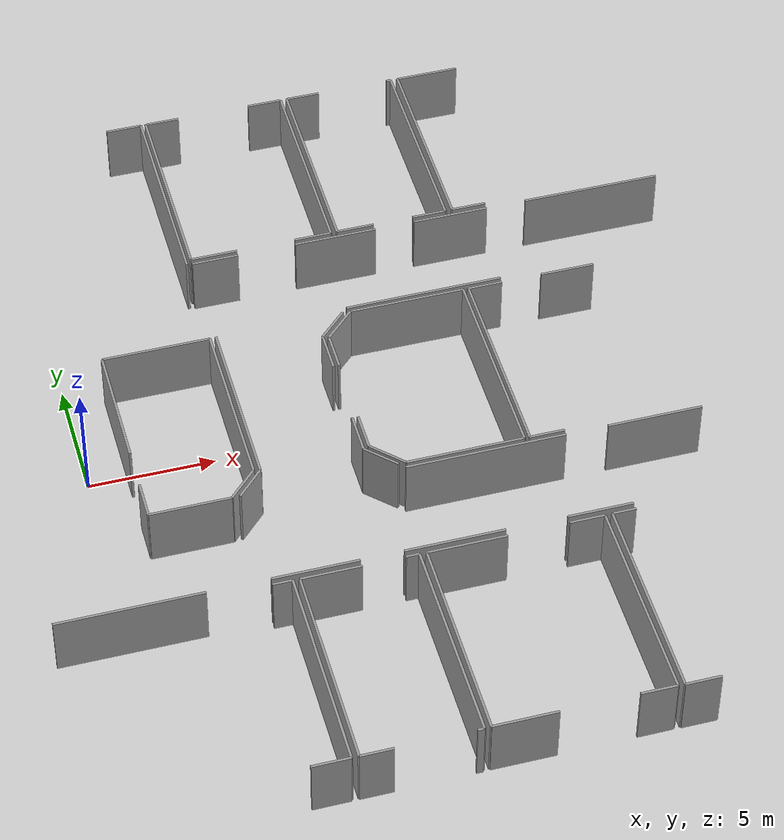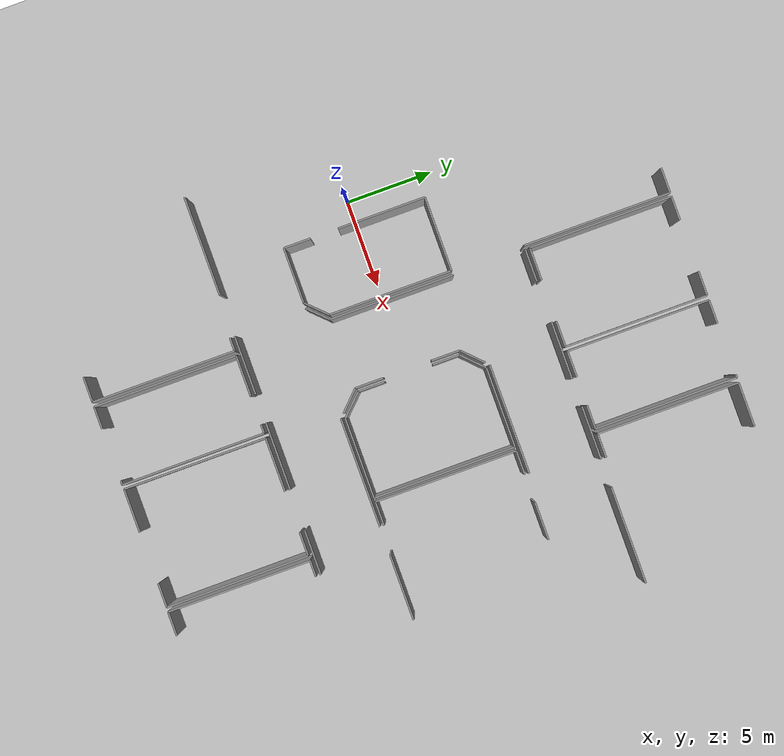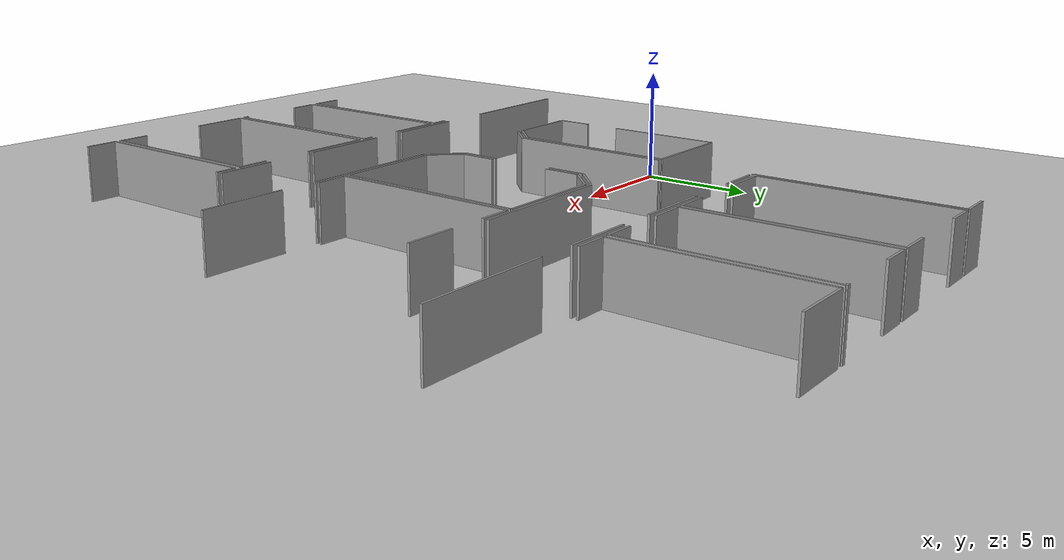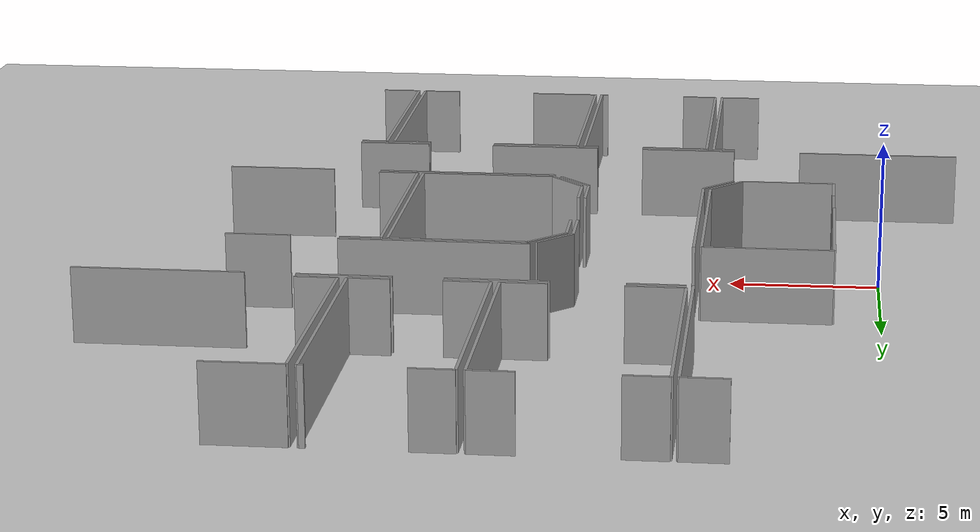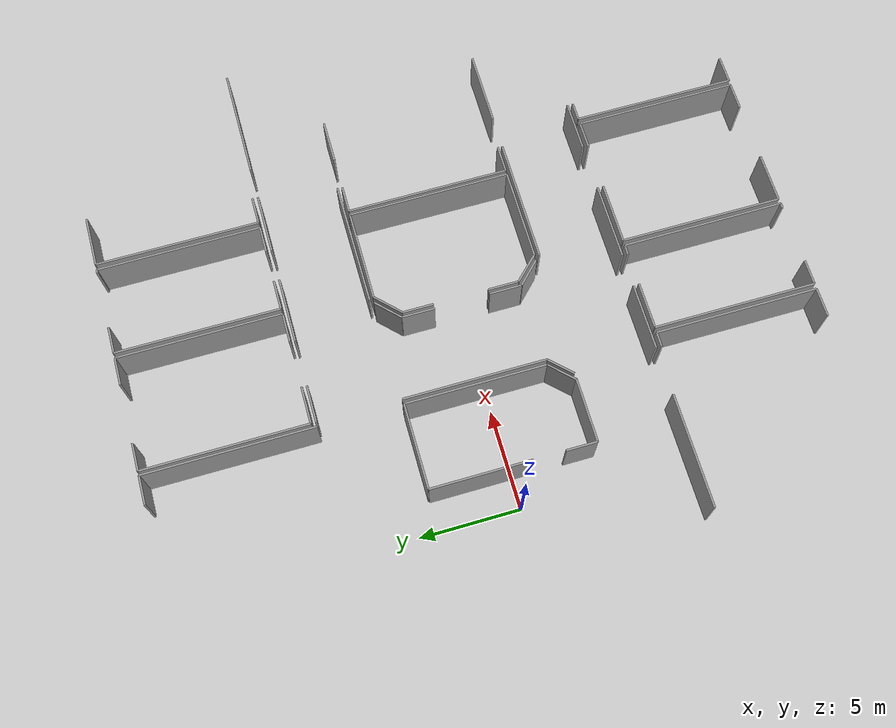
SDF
<sdf version="1.6">
 <world name="default">
  <model name="ground_plane">
   <static>1</static>
   <link name="link">
    <collision name="collision">
     <geometry><plane><normal>0 0 1</normal><size>100 100</size></plane></geometry>
     <surface><friction><ode><mu>100</mu><mu2>50</mu2></ode></friction></surface>
    </collision>
    <visual name="visual">
     <cast_shadows>0</cast_shadows>
     <geometry><plane><normal>0 0 1</normal><size>100 100</size></plane></geometry>
     <material>
      <script><uri>file://media/materials/scripts/gazebo.material</uri><name>Gazebo/Grey</name></script>
     </material>
    </visual>
   </link>
  </model>
  <model name="50041171">
   <static>1</static>
   <link name="Wall_64">
    <collision name="Wall_64_Collision">
     <geometry><box><size>8.46921870934 0.1 2.5</size></box></geometry>
     <pose>4.23460935467 0 1.25 0 0 0</pose>
    </collision>
    <visual name="Wall_64_Visual">
     <pose>4.23460935467 0 1.25 0 0 0</pose>
     <geometry><box><size>8.46921870934 0.1 2.5</size></box></geometry>
     <material>
      <script><uri>file://media/materials/scripts/gazebo.material</uri><name>Gazebo/Grey</name></script>
      <ambient>1 1 1 1</ambient>
     </material>
    </visual>
    <pose>71.5414447752 -8.48775286105 0 0 0 1.57079632679</pose>
   </link>
   <link name="Wall_65">
    <collision name="Wall_65_Collision">
     <geometry><box><size>1.44388658623 0.1 2.5</size></box></geometry>
     <pose>0.721943293113 0 1.25 0 0 0</pose>
    </collision>
    <visual name="Wall_65_Visual">
     <pose>0.721943293113 0 1.25 0 0 0</pose>
     <geometry><box><size>1.44388658623 0.1 2.5</size></box></geometry>
     <material>
      <script><uri>file://media/materials/scripts/gazebo.material</uri><name>Gazebo/Grey</name></script>
      <ambient>1 1 1 1</ambient>
     </material>
    </visual>
    <pose>71.5414447752 -0.0185341517135 0 0 0 3.14159265359</pose>
   </link>
   <link name="Wall_92">
    <collision name="Wall_92_Collision">
     <geometry><box><size>2.54996921554 0.1 2.5</size></box></geometry>
     <pose>1.27498460777 0 1.25 0 0 0</pose>
    </collision>
    <visual name="Wall_92_Visual">
     <pose>1.27498460777 0 1.25 0 0 0</pose>
     <geometry><box><size>2.54996921554 0.1 2.5</size></box></geometry>
     <material>
      <script><uri>file://media/materials/scripts/gazebo.material</uri><name>Gazebo/Grey</name></script>
      <ambient>1 1 1 1</ambient>
     </material>
    </visual>
    <pose>84.6671786832 -25.0291024266 0 0 0 3.14159265359</pose>
   </link>
   <link name="Wall_93">
    <collision name="Wall_93_Collision">
     <geometry><box><size>3.88760179502 0.1 2.5</size></box></geometry>
     <pose>1.94380089751 0 1.25 0 0 0</pose>
    </collision>
    <visual name="Wall_93_Visual">
     <pose>1.94380089751 0 1.25 0 0 0</pose>
     <geometry><box><size>3.88760179502 0.1 2.5</size></box></geometry>
     <material>
      <script><uri>file://media/materials/scripts/gazebo.material</uri><name>Gazebo/Grey</name></script>
      <ambient>1 1 1 1</ambient>
     </material>
    </visual>
    <pose>79.7381098974 -25.0291024266 0 0 0 3.14159265359</pose>
   </link>
   <link name="Wall_94">
    <collision name="Wall_94_Collision">
     <geometry><box><size>3.35582397634 0.1 2.5</size></box></geometry>
     <pose>1.67791198817 0 1.25 0 0 0</pose>
    </collision>
    <visual name="Wall_94_Visual">
     <pose>1.67791198817 0 1.25 0 0 0</pose>
     <geometry><box><size>3.35582397634 0.1 2.5</size></box></geometry>
     <material>
      <script><uri>file://media/materials/scripts/gazebo.material</uri><name>Gazebo/Grey</name></script>
      <ambient>1 1 1 1</ambient>
     </material>
    </visual>
    <pose>74.1913206853 -25.0291024266 0 0 0 3.14159265359</pose>
   </link>
   <link name="Wall_95">
    <collision name="Wall_95_Collision">
     <geometry><box><size>5.66180250973 0.1 2.5</size></box></geometry>
     <pose>2.83090125486 0 1.25 0 0 0</pose>
    </collision>
    <visual name="Wall_95_Visual">
     <pose>2.83090125486 0 1.25 0 0 0</pose>
     <geometry><box><size>5.66180250973 0.1 2.5</size></box></geometry>
     <material>
      <script><uri>file://media/materials/scripts/gazebo.material</uri><name>Gazebo/Grey</name></script>
      <ambient>1 1 1 1</ambient>
     </material>
    </visual>
    <pose>68.4312617822 -25.0291024266 0 0 0 3.14159265359</pose>
   </link>
   <link name="Wall_116">
    <collision name="Wall_116_Collision">
     <geometry><box><size>6.28383910833 0.1 2.5</size></box></geometry>
     <pose>3.14191955416 0 1.25 0 0 0</pose>
    </collision>
    <visual name="Wall_116_Visual">
     <pose>3.14191955416 0 1.25 0 0 0</pose>
     <geometry><box><size>6.28383910833 0.1 2.5</size></box></geometry>
     <material>
      <script><uri>file://media/materials/scripts/gazebo.material</uri><name>Gazebo/Grey</name></script>
      <ambient>1 1 1 1</ambient>
     </material>
    </visual>
    <pose>77.012827918 -21.0992275321 0 0 0 0.0</pose>
   </link>
   <link name="Wall_117">
    <collision name="Wall_117_Collision">
     <geometry><box><size>3.7372974414 0.1 2.5</size></box></geometry>
     <pose>1.8686487207 0 1.25 0 0 0</pose>
    </collision>
    <visual name="Wall_117_Visual">
     <pose>1.8686487207 0 1.25 0 0 0</pose>
     <geometry><box><size>3.7372974414 0.1 2.5</size></box></geometry>
     <material>
      <script><uri>file://media/materials/scripts/gazebo.material</uri><name>Gazebo/Grey</name></script>
      <ambient>1 1 1 1</ambient>
     </material>
    </visual>
    <pose>84.9704532616 -21.0992275321 0 0 0 0.0</pose>
   </link>
   <link name="Wall_169">
    <collision name="Wall_169_Collision">
     <geometry><box><size>3.17797228763 0.1 2.5</size></box></geometry>
     <pose>1.58898614382 0 1.25 0 0 0</pose>
    </collision>
    <visual name="Wall_169_Visual">
     <pose>1.58898614382 0 1.25 0 0 0</pose>
     <geometry><box><size>3.17797228763 0.1 2.5</size></box></geometry>
     <material>
      <script><uri>file://media/materials/scripts/gazebo.material</uri><name>Gazebo/Grey</name></script>
      <ambient>1 1 1 1</ambient>
     </material>
    </visual>
    <pose>70.3939776702 -20.8675506357 0 0 0 3.14159265359</pose>
   </link>
   <link name="Wall_170">
    <collision name="Wall_170_Collision">
     <geometry><box><size>1.54214297956 0.1 2.5</size></box></geometry>
     <pose>0.771071489778 0 1.25 0 0 0</pose>
    </collision>
    <visual name="Wall_170_Visual">
     <pose>0.771071489778 0 1.25 0 0 0</pose>
     <geometry><box><size>1.54214297956 0.1 2.5</size></box></geometry>
     <material>
      <script><uri>file://media/materials/scripts/gazebo.material</uri><name>Gazebo/Grey</name></script>
      <ambient>1 1 1 1</ambient>
     </material>
    </visual>
    <pose>67.2160053825 -20.8675506357 0 0 0 1.57079632679</pose>
   </link>
   <link name="Wall_171">
    <collision name="Wall_171_Collision">
     <geometry><box><size>5.04446292218 0.1 2.5</size></box></geometry>
     <pose>2.52223146109 0 1.25 0 0 0</pose>
    </collision>
    <visual name="Wall_171_Visual">
     <pose>2.52223146109 0 1.25 0 0 0</pose>
     <geometry><box><size>5.04446292218 0.1 2.5</size></box></geometry>
     <material>
      <script><uri>file://media/materials/scripts/gazebo.material</uri><name>Gazebo/Grey</name></script>
      <ambient>1 1 1 1</ambient>
     </material>
    </visual>
    <pose>67.2160053825 -17.7285508451 0 0 0 1.57079632679</pose>
   </link>
   <link name="Wall_172">
    <collision name="Wall_172_Collision">
     <geometry><box><size>4.26780579763 0.1 2.5</size></box></geometry>
     <pose>2.13390289882 0 1.25 0 0 0</pose>
    </collision>
    <visual name="Wall_172_Visual">
     <pose>2.13390289882 0 1.25 0 0 0</pose>
     <geometry><box><size>4.26780579763 0.1 2.5</size></box></geometry>
     <material>
      <script><uri>file://media/materials/scripts/gazebo.material</uri><name>Gazebo/Grey</name></script>
      <ambient>1 1 1 1</ambient>
     </material>
    </visual>
    <pose>67.2160053825 -12.684087923 0 0 0 0.0</pose>
   </link>
   <link name="Wall_173">
    <collision name="Wall_173_Collision">
     <geometry><box><size>7.06862079253 0.1 2.5</size></box></geometry>
     <pose>3.53431039626 0 1.25 0 0 0</pose>
    </collision>
    <visual name="Wall_173_Visual">
     <pose>3.53431039626 0 1.25 0 0 0</pose>
     <geometry><box><size>7.06862079253 0.1 2.5</size></box></geometry>
     <material>
      <script><uri>file://media/materials/scripts/gazebo.material</uri><name>Gazebo/Grey</name></script>
      <ambient>1 1 1 1</ambient>
     </material>
    </visual>
    <pose>71.4838111802 -12.684087923 0 0 0 -1.57079632679</pose>
   </link>
   <link name="Wall_174">
    <collision name="Wall_174_Collision">
     <geometry><box><size>1.55904123952 0.1 2.5</size></box></geometry>
     <pose>0.779520619761 0 1.25 0 0 0</pose>
    </collision>
    <visual name="Wall_174_Visual">
     <pose>0.779520619761 0 1.25 0 0 0</pose>
     <geometry><box><size>1.55904123952 0.1 2.5</size></box></geometry>
     <material>
      <script><uri>file://media/materials/scripts/gazebo.material</uri><name>Gazebo/Grey</name></script>
      <ambient>1 1 1 1</ambient>
     </material>
    </visual>
    <pose>71.4838111802 -19.7527087155 0 0 0 -2.34485162434</pose>
   </link>
   <link name="Wall_175">
    <collision name="Wall_175_Collision">
     <geometry><box><size>1.86344392467 0.1 2.5</size></box></geometry>
     <pose>0.931721962335 0 1.25 0 0 0</pose>
    </collision>
    <visual name="Wall_175_Visual">
     <pose>0.931721962335 0 1.25 0 0 0</pose>
     <geometry><box><size>1.86344392467 0.1 2.5</size></box></geometry>
     <material>
      <script><uri>file://media/materials/scripts/gazebo.material</uri><name>Gazebo/Grey</name></script>
      <ambient>1 1 1 1</ambient>
     </material>
    </visual>
    <pose>71.7517947025 -8.49295765708 0 0 0 0.0</pose>
   </link>
   <link name="Wall_176">
    <collision name="Wall_176_Collision">
     <geometry><box><size>3.3025065536 0.1 2.5</size></box></geometry>
     <pose>1.6512532768 0 1.25 0 0 0</pose>
    </collision>
    <visual name="Wall_176_Visual">
     <pose>1.6512532768 0 1.25 0 0 0</pose>
     <geometry><box><size>3.3025065536 0.1 2.5</size></box></geometry>
     <material>
      <script><uri>file://media/materials/scripts/gazebo.material</uri><name>Gazebo/Grey</name></script>
      <ambient>1 1 1 1</ambient>
     </material>
    </visual>
    <pose>75.9718687122 -8.49295765708 0 0 0 0.0</pose>
   </link>
   <link name="Wall_177">
    <collision name="Wall_177_Collision">
     <geometry><box><size>3.04696376319 0.1 2.5</size></box></geometry>
     <pose>1.5234818816 0 1.25 0 0 0</pose>
    </collision>
    <visual name="Wall_177_Visual">
     <pose>1.5234818816 0 1.25 0 0 0</pose>
     <geometry><box><size>3.04696376319 0.1 2.5</size></box></geometry>
     <material>
      <script><uri>file://media/materials/scripts/gazebo.material</uri><name>Gazebo/Grey</name></script>
      <ambient>1 1 1 1</ambient>
     </material>
    </visual>
    <pose>80.8846883787 -8.49295765708 0 0 0 0.0</pose>
   </link>
   <link name="Wall_178">
    <collision name="Wall_178_Collision">
     <geometry><box><size>5.56024551404 0.1 2.5</size></box></geometry>
     <pose>2.78012275702 0 1.25 0 0 0</pose>
    </collision>
    <visual name="Wall_178_Visual">
     <pose>2.78012275702 0 1.25 0 0 0</pose>
     <geometry><box><size>5.56024551404 0.1 2.5</size></box></geometry>
     <material>
      <script><uri>file://media/materials/scripts/gazebo.material</uri><name>Gazebo/Grey</name></script>
      <ambient>1 1 1 1</ambient>
     </material>
    </visual>
    <pose>85.5563101805 -8.49295765708 0 0 0 0.0</pose>
   </link>
   <link name="Wall_192">
    <collision name="Wall_192_Collision">
     <geometry><box><size>6.30024356784 0.1 2.5</size></box></geometry>
     <pose>3.15012178392 0 1.25 0 0 0</pose>
    </collision>
    <visual name="Wall_192_Visual">
     <pose>3.15012178392 0 1.25 0 0 0</pose>
     <geometry><box><size>6.30024356784 0.1 2.5</size></box></geometry>
     <material>
      <script><uri>file://media/materials/scripts/gazebo.material</uri><name>Gazebo/Grey</name></script>
      <ambient>1 1 1 1</ambient>
     </material>
    </visual>
    <pose>83.3220562753 -12.447460123 0 0 0 -3.13859038572</pose>
   </link>
   <link name="Wall_193">
    <collision name="Wall_193_Collision">
     <geometry><box><size>1.49009501926 0.1 2.5</size></box></geometry>
     <pose>0.745047509632 0 1.25 0 0 0</pose>
    </collision>
    <visual name="Wall_193_Visual">
     <pose>0.745047509632 0 1.25 0 0 0</pose>
     <geometry><box><size>1.49009501926 0.1 2.5</size></box></geometry>
     <material>
      <script><uri>file://media/materials/scripts/gazebo.material</uri><name>Gazebo/Grey</name></script>
      <ambient>1 1 1 1</ambient>
     </material>
    </visual>
    <pose>77.5029673685 -8.23906516785 0 0 0 3.14159265359</pose>
   </link>
   <link name="Wall_194">
    <collision name="Wall_194_Collision">
     <geometry><box><size>1.88705592617 0.1 2.5</size></box></geometry>
     <pose>0.943527963084 0 1.25 0 0 0</pose>
    </collision>
    <visual name="Wall_194_Visual">
     <pose>0.943527963084 0 1.25 0 0 0</pose>
     <geometry><box><size>1.88705592617 0.1 2.5</size></box></geometry>
     <material>
      <script><uri>file://media/materials/scripts/gazebo.material</uri><name>Gazebo/Grey</name></script>
      <ambient>1 1 1 1</ambient>
     </material>
    </visual>
    <pose>73.6394853599 -8.23906516785 0 0 0 3.14159265359</pose>
   </link>
   <link name="Wall_195">
    <collision name="Wall_195_Collision">
     <geometry><box><size>8.22129269361 0.1 2.5</size></box></geometry>
     <pose>4.1106463468 0 1.25 0 0 0</pose>
    </collision>
    <visual name="Wall_195_Visual">
     <pose>4.1106463468 0 1.25 0 0 0</pose>
     <geometry><box><size>8.22129269361 0.1 2.5</size></box></geometry>
     <material>
      <script><uri>file://media/materials/scripts/gazebo.material</uri><name>Gazebo/Grey</name></script>
      <ambient>1 1 1 1</ambient>
     </material>
    </visual>
    <pose>71.7524294338 -8.23906516785 0 0 0 1.57079632679</pose>
   </link>
   <link name="Wall_196">
    <collision name="Wall_196_Collision">
     <geometry><box><size>1.37228890426 0.1 2.5</size></box></geometry>
     <pose>0.686144452132 0 1.25 0 0 0</pose>
    </collision>
    <visual name="Wall_196_Visual">
     <pose>0.686144452132 0 1.25 0 0 0</pose>
     <geometry><box><size>1.37228890426 0.1 2.5</size></box></geometry>
     <material>
      <script><uri>file://media/materials/scripts/gazebo.material</uri><name>Gazebo/Grey</name></script>
      <ambient>1 1 1 1</ambient>
     </material>
    </visual>
    <pose>71.7524294338 -0.0177724742458 0 0 0 0.0</pose>
   </link>
   <link name="Wall_197">
    <collision name="Wall_197_Collision">
     <geometry><box><size>1.4068182828 0.1 2.5</size></box></geometry>
     <pose>0.703409141399 0 1.25 0 0 0</pose>
    </collision>
    <visual name="Wall_197_Visual">
     <pose>0.703409141399 0 1.25 0 0 0</pose>
     <geometry><box><size>1.4068182828 0.1 2.5</size></box></geometry>
     <material>
      <script><uri>file://media/materials/scripts/gazebo.material</uri><name>Gazebo/Grey</name></script>
      <ambient>1 1 1 1</ambient>
     </material>
    </visual>
    <pose>76.0960221394 -0.0177724742458 0 0 0 0.0</pose>
   </link>
   <link name="Wall_198">
    <collision name="Wall_198_Collision">
     <geometry><box><size>8.22129269459 0.1 2.5</size></box></geometry>
     <pose>4.11064634729 0 1.25 0 0 0</pose>
    </collision>
    <visual name="Wall_198_Visual">
     <pose>4.11064634729 0 1.25 0 0 0</pose>
     <geometry><box><size>8.22129269459 0.1 2.5</size></box></geometry>
     <material>
      <script><uri>file://media/materials/scripts/gazebo.material</uri><name>Gazebo/Grey</name></script>
      <ambient>1 1 1 1</ambient>
     </material>
    </visual>
    <pose>77.5028404222 -0.0177724742458 0 0 0 -1.57078088564</pose>
   </link>
   <link name="Wall_199">
    <collision name="Wall_199_Collision">
     <geometry><box><size>1.3573092474 0.1 2.5</size></box></geometry>
     <pose>0.6786546237 0 1.25 0 0 0</pose>
    </collision>
    <visual name="Wall_199_Visual">
     <pose>0.6786546237 0 1.25 0 0 0</pose>
     <geometry><box><size>1.3573092474 0.1 2.5</size></box></geometry>
     <material>
      <script><uri>file://media/materials/scripts/gazebo.material</uri><name>Gazebo/Grey</name></script>
      <ambient>1 1 1 1</ambient>
     </material>
    </visual>
    <pose>82.2767808971 -8.2204040699 0 0 0 3.14159265359</pose>
   </link>
   <link name="Wall_200">
    <collision name="Wall_200_Collision">
     <geometry><box><size>1.50850222473 0.1 2.5</size></box></geometry>
     <pose>0.754251112366 0 1.25 0 0 0</pose>
    </collision>
    <visual name="Wall_200_Visual">
     <pose>0.754251112366 0 1.25 0 0 0</pose>
     <geometry><box><size>1.50850222473 0.1 2.5</size></box></geometry>
     <material>
      <script><uri>file://media/materials/scripts/gazebo.material</uri><name>Gazebo/Grey</name></script>
      <ambient>1 1 1 1</ambient>
     </material>
    </visual>
    <pose>79.2741213733 -8.2204040699 0 0 0 3.14159265359</pose>
   </link>
   <link name="Wall_201">
    <collision name="Wall_201_Collision">
     <geometry><box><size>8.20745555295 0.1 2.5</size></box></geometry>
     <pose>4.10372777647 0 1.25 0 0 0</pose>
    </collision>
    <visual name="Wall_201_Visual">
     <pose>4.10372777647 0 1.25 0 0 0</pose>
     <geometry><box><size>8.20745555295 0.1 2.5</size></box></geometry>
     <material>
      <script><uri>file://media/materials/scripts/gazebo.material</uri><name>Gazebo/Grey</name></script>
      <ambient>1 1 1 1</ambient>
     </material>
    </visual>
    <pose>77.7656191486 -8.2204040699 0 0 0 1.57079632679</pose>
   </link>
   <link name="Wall_202">
    <collision name="Wall_202_Collision">
     <geometry><box><size>1.36111763474 0.1 2.5</size></box></geometry>
     <pose>0.680558817369 0 1.25 0 0 0</pose>
    </collision>
    <visual name="Wall_202_Visual">
     <pose>0.680558817369 0 1.25 0 0 0</pose>
     <geometry><box><size>1.36111763474 0.1 2.5</size></box></geometry>
     <material>
      <script><uri>file://media/materials/scripts/gazebo.material</uri><name>Gazebo/Grey</name></script>
      <ambient>1 1 1 1</ambient>
     </material>
    </visual>
    <pose>77.7656191486 -0.0129485169505 0 0 0 0.0</pose>
   </link>
   <link name="Wall_203">
    <collision name="Wall_203_Collision">
     <geometry><box><size>0.187626549538 0.1 2.5</size></box></geometry>
     <pose>0.0938132747688 0 1.25 0 0 0</pose>
    </collision>
    <visual name="Wall_203_Visual">
     <pose>0.0938132747688 0 1.25 0 0 0</pose>
     <geometry><box><size>0.187626549538 0.1 2.5</size></box></geometry>
     <material>
      <script><uri>file://media/materials/scripts/gazebo.material</uri><name>Gazebo/Grey</name></script>
      <ambient>1 1 1 1</ambient>
     </material>
    </visual>
    <pose>82.0749363682 -0.0129485169505 0 0 0 0.0</pose>
   </link>
   <link name="Wall_204">
    <collision name="Wall_204_Collision">
     <geometry><box><size>8.20746786802 0.1 2.5</size></box></geometry>
     <pose>4.10373393401 0 1.25 0 0 0</pose>
    </collision>
    <visual name="Wall_204_Visual">
     <pose>4.10373393401 0 1.25 0 0 0</pose>
     <geometry><box><size>8.20746786802 0.1 2.5</size></box></geometry>
     <material>
      <script><uri>file://media/materials/scripts/gazebo.material</uri><name>Gazebo/Grey</name></script>
      <ambient>1 1 1 1</ambient>
     </material>
    </visual>
    <pose>82.2625629177 -0.0129485169505 0 0 0 -1.56906400365</pose>
   </link>
   <link name="Wall_206">
    <collision name="Wall_206_Collision">
     <geometry><box><size>1.38231765759 0.1 2.5</size></box></geometry>
     <pose>0.691158828794 0 1.25 0 0 0</pose>
    </collision>
    <visual name="Wall_206_Visual">
     <pose>0.691158828794 0 1.25 0 0 0</pose>
     <geometry><box><size>1.38231765759 0.1 2.5</size></box></geometry>
     <material>
      <script><uri>file://media/materials/scripts/gazebo.material</uri><name>Gazebo/Grey</name></script>
      <ambient>1 1 1 1</ambient>
     </material>
    </visual>
    <pose>83.9424425727 -8.20935974662 0 0 0 3.14159265359</pose>
   </link>
   <link name="Wall_207">
    <collision name="Wall_207_Collision">
     <geometry><box><size>8.19044475617 0.1 2.5</size></box></geometry>
     <pose>4.09522237808 0 1.25 0 0 0</pose>
    </collision>
    <visual name="Wall_207_Visual">
     <pose>4.09522237808 0 1.25 0 0 0</pose>
     <geometry><box><size>8.19044475617 0.1 2.5</size></box></geometry>
     <material>
      <script><uri>file://media/materials/scripts/gazebo.material</uri><name>Gazebo/Grey</name></script>
      <ambient>1 1 1 1</ambient>
     </material>
    </visual>
    <pose>82.5601249151 -8.20935974662 0 0 0 1.57079632679</pose>
   </link>
   <link name="Wall_208">
    <collision name="Wall_208_Collision">
     <geometry><box><size>2.54882669933 0.1 2.5</size></box></geometry>
     <pose>1.27441334967 0 1.25 0 0 0</pose>
    </collision>
    <visual name="Wall_208_Visual">
     <pose>1.27441334967 0 1.25 0 0 0</pose>
     <geometry><box><size>2.54882669933 0.1 2.5</size></box></geometry>
     <material>
      <script><uri>file://media/materials/scripts/gazebo.material</uri><name>Gazebo/Grey</name></script>
      <ambient>1 1 1 1</ambient>
     </material>
    </visual>
    <pose>82.5601249151 -0.0189149904473 0 0 0 0.0</pose>
   </link>
   <link name="Wall_251">
    <collision name="Wall_251_Collision">
     <geometry><box><size>1.51845730457 0.1 2.5</size></box></geometry>
     <pose>0.759228652287 0 1.25 0 0 0</pose>
    </collision>
    <visual name="Wall_251_Visual">
     <pose>0.759228652287 0 1.25 0 0 0</pose>
     <geometry><box><size>1.51845730457 0.1 2.5</size></box></geometry>
     <material>
      <script><uri>file://media/materials/scripts/gazebo.material</uri><name>Gazebo/Grey</name></script>
      <ambient>1 1 1 1</ambient>
     </material>
    </visual>
    <pose>76.8041282919 -20.8703434531 0 0 0 2.3566674152</pose>
   </link>
   <link name="Wall_252">
    <collision name="Wall_252_Collision">
     <geometry><box><size>1.63900296419 0.1 2.5</size></box></geometry>
     <pose>0.819501482097 0 1.25 0 0 0</pose>
    </collision>
    <visual name="Wall_252_Visual">
     <pose>0.819501482097 0 1.25 0 0 0</pose>
     <geometry><box><size>1.63900296419 0.1 2.5</size></box></geometry>
     <material>
      <script><uri>file://media/materials/scripts/gazebo.material</uri><name>Gazebo/Grey</name></script>
      <ambient>1 1 1 1</ambient>
     </material>
    </visual>
    <pose>75.72990917 -19.7971399011 0 0 0 1.57079632679</pose>
   </link>
   <link name="Wall_253">
    <collision name="Wall_253_Collision">
     <geometry><box><size>1.65575986848 0.1 2.5</size></box></geometry>
     <pose>0.827879934242 0 1.25 0 0 0</pose>
    </collision>
    <visual name="Wall_253_Visual">
     <pose>0.827879934242 0 1.25 0 0 0</pose>
     <geometry><box><size>1.65575986848 0.1 2.5</size></box></geometry>
     <material>
      <script><uri>file://media/materials/scripts/gazebo.material</uri><name>Gazebo/Grey</name></script>
      <ambient>1 1 1 1</ambient>
     </material>
    </visual>
    <pose>75.72990917 -15.3894393419 0 0 0 1.57079632679</pose>
   </link>
   <link name="Wall_254">
    <collision name="Wall_254_Collision">
     <geometry><box><size>1.5376261627 0.1 2.5</size></box></geometry>
     <pose>0.768813081352 0 1.25 0 0 0</pose>
    </collision>
    <visual name="Wall_254_Visual">
     <pose>0.768813081352 0 1.25 0 0 0</pose>
     <geometry><box><size>1.5376261627 0.1 2.5</size></box></geometry>
     <material>
      <script><uri>file://media/materials/scripts/gazebo.material</uri><name>Gazebo/Grey</name></script>
      <ambient>1 1 1 1</ambient>
     </material>
    </visual>
    <pose>75.72990917 -13.7336794734 0 0 0 0.777400202115</pose>
   </link>
   <link name="Wall_255">
    <collision name="Wall_255_Collision">
     <geometry><box><size>7.16383047598 0.1 2.5</size></box></geometry>
     <pose>3.58191523799 0 1.25 0 0 0</pose>
    </collision>
    <visual name="Wall_255_Visual">
     <pose>3.58191523799 0 1.25 0 0 0</pose>
     <geometry><box><size>7.16383047598 0.1 2.5</size></box></geometry>
     <material>
      <script><uri>file://media/materials/scripts/gazebo.material</uri><name>Gazebo/Grey</name></script>
      <ambient>1 1 1 1</ambient>
     </material>
    </visual>
    <pose>71.729706056 -12.6551441792 0 0 0 -1.57079632679</pose>
   </link>
   <link name="Wall_256">
    <collision name="Wall_256_Collision">
     <geometry><box><size>1.46777610814 0.1 2.5</size></box></geometry>
     <pose>0.733888054071 0 1.25 0 0 0</pose>
    </collision>
    <visual name="Wall_256_Visual">
     <pose>0.733888054071 0 1.25 0 0 0</pose>
     <geometry><box><size>1.46777610814 0.1 2.5</size></box></geometry>
     <material>
      <script><uri>file://media/materials/scripts/gazebo.material</uri><name>Gazebo/Grey</name></script>
      <ambient>1 1 1 1</ambient>
     </material>
    </visual>
    <pose>71.729706056 -19.8189746552 0 0 0 -2.34310655252</pose>
   </link>
   <link name="Wall_257">
    <collision name="Wall_257_Collision">
     <geometry><box><size>4.62668283116 0.1 2.5</size></box></geometry>
     <pose>2.31334141558 0 1.25 0 0 0</pose>
    </collision>
    <visual name="Wall_257_Visual">
     <pose>2.31334141558 0 1.25 0 0 0</pose>
     <geometry><box><size>4.62668283116 0.1 2.5</size></box></geometry>
     <material>
      <script><uri>file://media/materials/scripts/gazebo.material</uri><name>Gazebo/Grey</name></script>
      <ambient>1 1 1 1</ambient>
     </material>
    </visual>
    <pose>81.725072518 -20.8703434531 0 0 0 3.14159265359</pose>
   </link>
   <link name="Wall_258">
    <collision name="Wall_258_Collision">
     <geometry><box><size>1.62901368818 0.1 2.5</size></box></geometry>
     <pose>0.814506844091 0 1.25 0 0 0</pose>
    </collision>
    <visual name="Wall_258_Visual">
     <pose>0.814506844091 0 1.25 0 0 0</pose>
     <geometry><box><size>1.62901368818 0.1 2.5</size></box></geometry>
     <material>
      <script><uri>file://media/materials/scripts/gazebo.material</uri><name>Gazebo/Grey</name></script>
      <ambient>1 1 1 1</ambient>
     </material>
    </visual>
    <pose>77.0983896869 -20.8703434531 0 0 0 2.34787374764</pose>
   </link>
   <link name="Wall_259">
    <collision name="Wall_259_Collision">
     <geometry><box><size>1.54544358192 0.1 2.5</size></box></geometry>
     <pose>0.772721790958 0 1.25 0 0 0</pose>
    </collision>
    <visual name="Wall_259_Visual">
     <pose>0.772721790958 0 1.25 0 0 0</pose>
     <geometry><box><size>1.54544358192 0.1 2.5</size></box></geometry>
     <material>
      <script><uri>file://media/materials/scripts/gazebo.material</uri><name>Gazebo/Grey</name></script>
      <ambient>1 1 1 1</ambient>
     </material>
    </visual>
    <pose>75.9561273779 -19.7089122611 0 0 0 1.57079632679</pose>
   </link>
   <link name="Wall_260">
    <collision name="Wall_260_Collision">
     <geometry><box><size>1.55509149651 0.1 2.5</size></box></geometry>
     <pose>0.777545748253 0 1.25 0 0 0</pose>
    </collision>
    <visual name="Wall_260_Visual">
     <pose>0.777545748253 0 1.25 0 0 0</pose>
     <geometry><box><size>1.55509149651 0.1 2.5</size></box></geometry>
     <material>
      <script><uri>file://media/materials/scripts/gazebo.material</uri><name>Gazebo/Grey</name></script>
      <ambient>1 1 1 1</ambient>
     </material>
    </visual>
    <pose>75.9561273779 -15.3894393419 0 0 0 1.57079632679</pose>
   </link>
   <link name="Wall_261">
    <collision name="Wall_261_Collision">
     <geometry><box><size>1.6409542096 0.1 2.5</size></box></geometry>
     <pose>0.8204771048 0 1.25 0 0 0</pose>
    </collision>
    <visual name="Wall_261_Visual">
     <pose>0.8204771048 0 1.25 0 0 0</pose>
     <geometry><box><size>1.6409542096 0.1 2.5</size></box></geometry>
     <material>
      <script><uri>file://media/materials/scripts/gazebo.material</uri><name>Gazebo/Grey</name></script>
      <ambient>1 1 1 1</ambient>
     </material>
    </visual>
    <pose>75.9561273779 -13.8343478454 0 0 0 0.776973855033</pose>
   </link>
   <link name="Wall_262">
    <collision name="Wall_262_Collision">
     <geometry><box><size>4.5903762052 0.1 2.5</size></box></geometry>
     <pose>2.2951881026 0 1.25 0 0 0</pose>
    </collision>
    <visual name="Wall_262_Visual">
     <pose>2.2951881026 0 1.25 0 0 0</pose>
     <geometry><box><size>4.5903762052 0.1 2.5</size></box></geometry>
     <material>
      <script><uri>file://media/materials/scripts/gazebo.material</uri><name>Gazebo/Grey</name></script>
      <ambient>1 1 1 1</ambient>
     </material>
    </visual>
    <pose>77.1261909145 -12.6838340305 0 0 0 0.0</pose>
   </link>
   <link name="Wall_263">
    <collision name="Wall_263_Collision">
     <geometry><box><size>8.18651384094 0.1 2.5</size></box></geometry>
     <pose>4.09325692047 0 1.25 0 0 0</pose>
    </collision>
    <visual name="Wall_263_Visual">
     <pose>4.09325692047 0 1.25 0 0 0</pose>
     <geometry><box><size>8.18651384094 0.1 2.5</size></box></geometry>
     <material>
      <script><uri>file://media/materials/scripts/gazebo.material</uri><name>Gazebo/Grey</name></script>
      <ambient>1 1 1 1</ambient>
     </material>
    </visual>
    <pose>81.7165671197 -12.6838340305 0 0 0 -1.56975737419</pose>
   </link>
   <link name="Wall_265">
    <collision name="Wall_265_Collision">
     <geometry><box><size>1.37673202282 0.1 2.5</size></box></geometry>
     <pose>0.688366011412 0 1.25 0 0 0</pose>
    </collision>
    <visual name="Wall_265_Visual">
     <pose>0.688366011412 0 1.25 0 0 0</pose>
     <geometry><box><size>1.37673202282 0.1 2.5</size></box></geometry>
     <material>
      <script><uri>file://media/materials/scripts/gazebo.material</uri><name>Gazebo/Grey</name></script>
      <ambient>1 1 1 1</ambient>
     </material>
    </visual>
    <pose>83.3127891994 -20.8703434531 0 0 0 3.14159265359</pose>
   </link>
   <link name="Wall_266">
    <collision name="Wall_266_Collision">
     <geometry><box><size>8.18079684158 0.1 2.5</size></box></geometry>
     <pose>4.09039842079 0 1.25 0 0 0</pose>
    </collision>
    <visual name="Wall_266_Visual">
     <pose>4.09039842079 0 1.25 0 0 0</pose>
     <geometry><box><size>8.18079684158 0.1 2.5</size></box></geometry>
     <material>
      <script><uri>file://media/materials/scripts/gazebo.material</uri><name>Gazebo/Grey</name></script>
      <ambient>1 1 1 1</ambient>
     </material>
    </visual>
    <pose>81.9360571766 -20.8703434531 0 0 0 1.57079632679</pose>
   </link>
   <link name="Wall_267">
    <collision name="Wall_267_Collision">
     <geometry><box><size>1.36149847347 0.1 2.5</size></box></geometry>
     <pose>0.680749236736 0 1.25 0 0 0</pose>
    </collision>
    <visual name="Wall_267_Visual">
     <pose>0.680749236736 0 1.25 0 0 0</pose>
     <geometry><box><size>1.36149847347 0.1 2.5</size></box></geometry>
     <material>
      <script><uri>file://media/materials/scripts/gazebo.material</uri><name>Gazebo/Grey</name></script>
      <ambient>1 1 1 1</ambient>
     </material>
    </visual>
    <pose>81.9360571766 -12.6895466115 0 0 0 0.0</pose>
   </link>
   <link name="Wall_268">
    <collision name="Wall_268_Collision">
     <geometry><box><size>2.16938437419 0.1 2.5</size></box></geometry>
     <pose>1.08469218709 0 1.25 0 0 0</pose>
    </collision>
    <visual name="Wall_268_Visual">
     <pose>1.08469218709 0 1.25 0 0 0</pose>
     <geometry><box><size>2.16938437419 0.1 2.5</size></box></geometry>
     <material>
      <script><uri>file://media/materials/scripts/gazebo.material</uri><name>Gazebo/Grey</name></script>
      <ambient>1 1 1 1</ambient>
     </material>
    </visual>
    <pose>84.9214520111 -12.6895466115 0 0 0 0.0</pose>
   </link>
   <link name="Wall_362">
    <collision name="Wall_362_Collision">
     <geometry><box><size>1.45886624309 0.1 2.5</size></box></geometry>
     <pose>0.729433121545 0 1.25 0 0 0</pose>
    </collision>
    <visual name="Wall_362_Visual">
     <pose>0.729433121545 0 1.25 0 0 0</pose>
     <geometry><box><size>1.45886624309 0.1 2.5</size></box></geometry>
     <material>
      <script><uri>file://media/materials/scripts/gazebo.material</uri><name>Gazebo/Grey</name></script>
      <ambient>1 1 1 1</ambient>
     </material>
    </visual>
    <pose>71.5776244549 -33.5446565152 0 0 0 3.14159265359</pose>
   </link>
   <link name="Wall_366">
    <collision name="Wall_366_Collision">
     <geometry><box><size>0.761677467676 0.1 2.5</size></box></geometry>
     <pose>0.380838733838 0 1.25 0 0 0</pose>
    </collision>
    <visual name="Wall_366_Visual">
     <pose>0.380838733838 0 1.25 0 0 0</pose>
     <geometry><box><size>0.761677467676 0.1 2.5</size></box></geometry>
     <material>
      <script><uri>file://media/materials/scripts/gazebo.material</uri><name>Gazebo/Grey</name></script>
      <ambient>1 1 1 1</ambient>
     </material>
    </visual>
    <pose>70.8244523856 -25.3026715837 0 0 0 0.0</pose>
   </link>
   <link name="Wall_367">
    <collision name="Wall_367_Collision">
     <geometry><box><size>8.24198932009 0.1 2.5</size></box></geometry>
     <pose>4.12099466005 0 1.25 0 0 0</pose>
    </collision>
    <visual name="Wall_367_Visual">
     <pose>4.12099466005 0 1.25 0 0 0</pose>
     <geometry><box><size>8.24198932009 0.1 2.5</size></box></geometry>
     <material>
      <script><uri>file://media/materials/scripts/gazebo.material</uri><name>Gazebo/Grey</name></script>
      <ambient>1 1 1 1</ambient>
     </material>
    </visual>
    <pose>71.5861298533 -25.3026715837 0 0 0 -1.57182828638</pose>
   </link>
   <link name="Wall_368">
    <collision name="Wall_368_Collision">
     <geometry><box><size>0.256177521628 0.1 2.5</size></box></geometry>
     <pose>0.128088760814 0 1.25 0 0 0</pose>
    </collision>
    <visual name="Wall_368_Visual">
     <pose>0.128088760814 0 1.25 0 0 0</pose>
     <geometry><box><size>0.256177521628 0.1 2.5</size></box></geometry>
     <material>
      <script><uri>file://media/materials/scripts/gazebo.material</uri><name>Gazebo/Grey</name></script>
      <ambient>1 1 1 1</ambient>
     </material>
    </visual>
    <pose>76.3779697487 -33.5485918488 0 0 0 3.14159265359</pose>
   </link>
   <link name="Wall_369">
    <collision name="Wall_369_Collision">
     <geometry><box><size>1.27009717735 0.1 2.5</size></box></geometry>
     <pose>0.635048588675 0 1.25 0 0 0</pose>
    </collision>
    <visual name="Wall_369_Visual">
     <pose>0.635048588675 0 1.25 0 0 0</pose>
     <geometry><box><size>1.27009717735 0.1 2.5</size></box></geometry>
     <material>
      <script><uri>file://media/materials/scripts/gazebo.material</uri><name>Gazebo/Grey</name></script>
      <ambient>1 1 1 1</ambient>
     </material>
    </visual>
    <pose>73.1168476709 -33.5485918488 0 0 0 3.14159265359</pose>
   </link>
   <link name="Wall_370">
    <collision name="Wall_370_Collision">
     <geometry><box><size>8.23627235047 0.1 2.5</size></box></geometry>
     <pose>4.11813617524 0 1.25 0 0 0</pose>
    </collision>
    <visual name="Wall_370_Visual">
     <pose>4.11813617524 0 1.25 0 0 0</pose>
     <geometry><box><size>8.23627235047 0.1 2.5</size></box></geometry>
     <material>
      <script><uri>file://media/materials/scripts/gazebo.material</uri><name>Gazebo/Grey</name></script>
      <ambient>1 1 1 1</ambient>
     </material>
    </visual>
    <pose>71.8467504935 -33.5485918488 0 0 0 1.57079632679</pose>
   </link>
   <link name="Wall_371">
    <collision name="Wall_371_Collision">
     <geometry><box><size>2.35421810634 0.1 2.5</size></box></geometry>
     <pose>1.17710905317 0 1.25 0 0 0</pose>
    </collision>
    <visual name="Wall_371_Visual">
     <pose>1.17710905317 0 1.25 0 0 0</pose>
     <geometry><box><size>2.35421810634 0.1 2.5</size></box></geometry>
     <material>
      <script><uri>file://media/materials/scripts/gazebo.material</uri><name>Gazebo/Grey</name></script>
      <ambient>1 1 1 1</ambient>
     </material>
    </visual>
    <pose>71.8467504935 -25.3123194983 0 0 0 0.0</pose>
   </link>
   <link name="Wall_372">
    <collision name="Wall_372_Collision">
     <geometry><box><size>0.507784978451 0.1 2.5</size></box></geometry>
     <pose>0.253892489225 0 1.25 0 0 0</pose>
    </collision>
    <visual name="Wall_372_Visual">
     <pose>0.253892489225 0 1.25 0 0 0</pose>
     <geometry><box><size>0.507784978451 0.1 2.5</size></box></geometry>
     <material>
      <script><uri>file://media/materials/scripts/gazebo.material</uri><name>Gazebo/Grey</name></script>
      <ambient>1 1 1 1</ambient>
     </material>
    </visual>
    <pose>75.8470805537 -25.3123194983 0 0 0 0.0</pose>
   </link>
   <link name="Wall_373">
    <collision name="Wall_373_Collision">
     <geometry><box><size>8.23630475614 0.1 2.5</size></box></geometry>
     <pose>4.11815237807 0 1.25 0 0 0</pose>
    </collision>
    <visual name="Wall_373_Visual">
     <pose>4.11815237807 0 1.25 0 0 0</pose>
     <geometry><box><size>8.23630475614 0.1 2.5</size></box></geometry>
     <material>
      <script><uri>file://media/materials/scripts/gazebo.material</uri><name>Gazebo/Grey</name></script>
      <ambient>1 1 1 1</ambient>
     </material>
    </visual>
    <pose>76.3548655322 -25.3123194983 0 0 0 -1.56799115536</pose>
   </link>
   <link name="Wall_374">
    <collision name="Wall_374_Collision">
     <geometry><box><size>1.3854913137 0.1 2.5</size></box></geometry>
     <pose>0.692745656852 0 1.25 0 0 0</pose>
    </collision>
    <visual name="Wall_374_Visual">
     <pose>0.692745656852 0 1.25 0 0 0</pose>
     <geometry><box><size>1.3854913137 0.1 2.5</size></box></geometry>
     <material>
      <script><uri>file://media/materials/scripts/gazebo.material</uri><name>Gazebo/Grey</name></script>
      <ambient>1 1 1 1</ambient>
     </material>
    </visual>
    <pose>83.4896253182 -33.5318349445 0 0 0 3.14159265359</pose>
   </link>
   <link name="Wall_375">
    <collision name="Wall_375_Collision">
     <geometry><box><size>2.5026182663 0.1 2.5</size></box></geometry>
     <pose>1.25130913315 0 1.25 0 0 0</pose>
    </collision>
    <visual name="Wall_375_Visual">
     <pose>1.25130913315 0 1.25 0 0 0</pose>
     <geometry><box><size>2.5026182663 0.1 2.5</size></box></geometry>
     <material>
      <script><uri>file://media/materials/scripts/gazebo.material</uri><name>Gazebo/Grey</name></script>
      <ambient>1 1 1 1</ambient>
     </material>
    </visual>
    <pose>79.1294026544 -33.5318349445 0 0 0 3.14159265359</pose>
   </link>
   <link name="Wall_376">
    <collision name="Wall_376_Collision">
     <geometry><box><size>8.21050226282 0.1 2.5</size></box></geometry>
     <pose>4.10525113141 0 1.25 0 0 0</pose>
    </collision>
    <visual name="Wall_376_Visual">
     <pose>4.10525113141 0 1.25 0 0 0</pose>
     <geometry><box><size>8.21050226282 0.1 2.5</size></box></geometry>
     <material>
      <script><uri>file://media/materials/scripts/gazebo.material</uri><name>Gazebo/Grey</name></script>
      <ambient>1 1 1 1</ambient>
     </material>
    </visual>
    <pose>76.6267843882 -33.5318349445 0 0 0 1.57079632679</pose>
   </link>
   <link name="Wall_377">
    <collision name="Wall_377_Collision">
     <geometry><box><size>3.098757831 0.1 2.5</size></box></geometry>
     <pose>1.5493789155 0 1.25 0 0 0</pose>
    </collision>
    <visual name="Wall_377_Visual">
     <pose>1.5493789155 0 1.25 0 0 0</pose>
     <geometry><box><size>3.098757831 0.1 2.5</size></box></geometry>
     <material>
      <script><uri>file://media/materials/scripts/gazebo.material</uri><name>Gazebo/Grey</name></script>
      <ambient>1 1 1 1</ambient>
     </material>
    </visual>
    <pose>76.6267843882 -25.3213326817 0 0 0 0.0</pose>
   </link>
   <link name="Wall_378">
    <collision name="Wall_378_Collision">
     <geometry><box><size>1.36048290351 0.1 2.5</size></box></geometry>
     <pose>0.680241451757 0 1.25 0 0 0</pose>
    </collision>
    <visual name="Wall_378_Visual">
     <pose>0.680241451757 0 1.25 0 0 0</pose>
     <geometry><box><size>1.36048290351 0.1 2.5</size></box></geometry>
     <material>
      <script><uri>file://media/materials/scripts/gazebo.material</uri><name>Gazebo/Grey</name></script>
      <ambient>1 1 1 1</ambient>
     </material>
    </visual>
    <pose>82.1040070582 -25.3213326817 0 0 0 0.0</pose>
   </link>
   <link name="Wall_379">
    <collision name="Wall_379_Collision">
     <geometry><box><size>8.210540737 0.1 2.5</size></box></geometry>
     <pose>4.1052703685 0 1.25 0 0 0</pose>
    </collision>
    <visual name="Wall_379_Visual">
     <pose>4.1052703685 0 1.25 0 0 0</pose>
     <geometry><box><size>8.210540737 0.1 2.5</size></box></geometry>
     <material>
      <script><uri>file://media/materials/scripts/gazebo.material</uri><name>Gazebo/Grey</name></script>
      <ambient>1 1 1 1</ambient>
     </material>
    </visual>
    <pose>83.4644899617 -25.3213326817 0 0 0 -1.56773496988</pose>
   </link>
   <link name="Wall_381">
    <collision name="Wall_381_Collision">
     <geometry><box><size>1.38561825995 0.1 2.5</size></box></geometry>
     <pose>0.692809129974 0 1.25 0 0 0</pose>
    </collision>
    <visual name="Wall_381_Visual">
     <pose>0.692809129974 0 1.25 0 0 0</pose>
     <geometry><box><size>1.38561825995 0.1 2.5</size></box></geometry>
     <material>
      <script><uri>file://media/materials/scripts/gazebo.material</uri><name>Gazebo/Grey</name></script>
      <ambient>1 1 1 1</ambient>
     </material>
    </visual>
    <pose>85.1339600246 -33.5511307737 0 0 0 3.14159265359</pose>
   </link>
   <link name="Wall_382">
    <collision name="Wall_382_Collision">
     <geometry><box><size>8.23589151174 0.1 2.5</size></box></geometry>
     <pose>4.11794575587 0 1.25 0 0 0</pose>
    </collision>
    <visual name="Wall_382_Visual">
     <pose>4.11794575587 0 1.25 0 0 0</pose>
     <geometry><box><size>8.23589151174 0.1 2.5</size></box></geometry>
     <material>
      <script><uri>file://media/materials/scripts/gazebo.material</uri><name>Gazebo/Grey</name></script>
      <ambient>1 1 1 1</ambient>
     </material>
    </visual>
    <pose>83.7483417647 -33.5511307737 0 0 0 1.57079632679</pose>
   </link>
   <link name="Wall_383">
    <collision name="Wall_383_Collision">
     <geometry><box><size>0.922010574622 0.1 2.5</size></box></geometry>
     <pose>0.461005287311 0 1.25 0 0 0</pose>
    </collision>
    <visual name="Wall_383_Visual">
     <pose>0.461005287311 0 1.25 0 0 0</pose>
     <geometry><box><size>0.922010574622 0.1 2.5</size></box></geometry>
     <material>
      <script><uri>file://media/materials/scripts/gazebo.material</uri><name>Gazebo/Grey</name></script>
      <ambient>1 1 1 1</ambient>
     </material>
    </visual>
    <pose>83.7483417647 -25.3152392619 0 0 0 0.0</pose>
   </link>
   <pose>-65.65 16.7602709033 0 0 0 0</pose>
  </model>
 </world>
</sdf>
